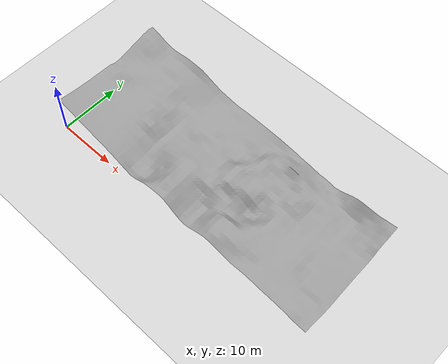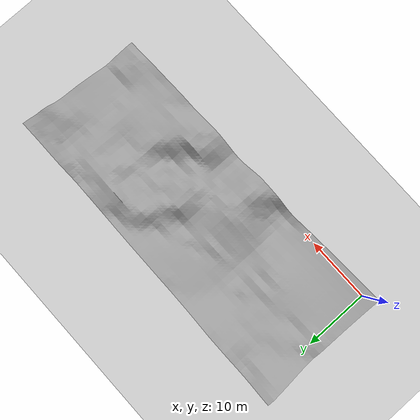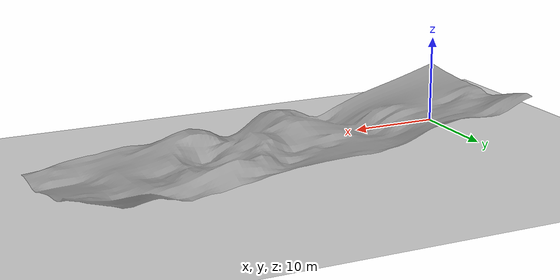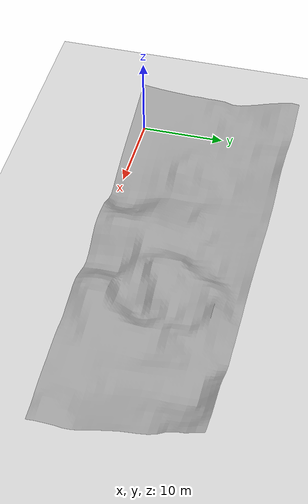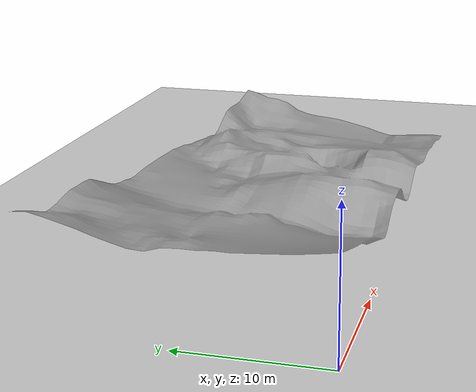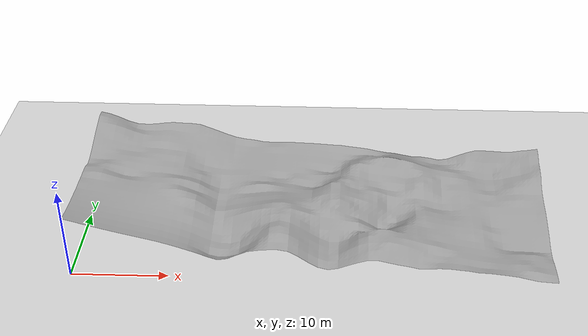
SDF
<sdf version="1.7">
 <world name="default">
  <light name="sun" type="directional">
   <pose>0 0 10 0 -0 0</pose>
   <diffuse>0.8 0.8 0.8 1</diffuse>
   <specular>0.2 0.2 0.2 1</specular>
   <attenuation>
    <range>1000</range>
    <constant>0.9</constant>
    <linear>0.01</linear>
    <quadratic>0.001</quadratic>
   </attenuation>
   <direction>-0.5 0.1 -0.9</direction>
   <spot><inner_angle>0</inner_angle><outer_angle>0</outer_angle><falloff>0</falloff></spot>
  </light>
  <model name="ground_plane">
   <static>1</static>
   <link name="link">
    <collision name="collision">
     <geometry><plane><normal>0 0 1</normal><size>100 100</size></plane></geometry>
     <surface>
      <contact><collide_bitmask>65535</collide_bitmask></contact>
      <friction><ode><mu>0.4</mu><mu2>0.4</mu2></ode></friction>
     </surface>
    </collision>
    <visual name="visual">
     <cast_shadows>0</cast_shadows>
     <geometry><plane><normal>0 0 1</normal><size>100 100</size></plane></geometry>
     <material>
      <script><uri>file://media/materials/scripts/gazebo.material</uri><name>Gazebo/Grey</name></script>
     </material>
    </visual>
   </link>
  </model>
  <gravity>0 0 -9.8</gravity>
  <magnetic_field>6e-06 2.3e-05 -4.2e-05</magnetic_field>
  <atmosphere type="adiabatic"/>
  <physics type="ode">
   <max_step_size>0.001</max_step_size>
   <real_time_factor>1</real_time_factor>
   <real_time_update_rate>1000</real_time_update_rate>
  </physics>
  <scene><ambient>0.4 0.4 0.4 1</ambient><background>0.7 0.7 0.7 1</background><shadows>1</shadows></scene>
  <spherical_coordinates>
   <surface_model>EARTH_WGS84</surface_model>
   <latitude_deg>0</latitude_deg>
   <longitude_deg>0</longitude_deg>
   <elevation>0</elevation>
   <heading_deg>0</heading_deg>
  </spherical_coordinates>
  <model name="MSL_Gale_DEM_Mosaic_1m_v3_X_14315-14364_Y_47079-47098_v1">
   <link name="link">
    <inertial>
     <mass>1</mass>
     <inertia>
      <ixx>0.166667</ixx>
      <ixy>0</ixy>
      <ixz>0</ixz>
      <iyy>0.166667</iyy>
      <iyz>0</iyz>
      <izz>0.166667</izz>
     </inertia>
    </inertial>
    <pose>-5.40297 -11.0159 0.000108 0 -0 0</pose>
    <visual name="visual">
     <geometry>
      <mesh>
       <uri>/home/gaz/catkin_ws/src/robot4ws_description/meshes/MSL_Gale_DEM_Mosaic_1m_v3_X_14315-14364_Y_47079-47098.dae</uri>
       <scale>1 1 1</scale>
      </mesh>
     </geometry>
     <material>
      <script><name>Gazebo/Grey</name><uri>file://media/materials/scripts/gazebo.material</uri></script>
      <shader type="pixel"><normal_map>__default__</normal_map></shader>
      <ambient>0.3 0.3 0.3 1</ambient>
      <diffuse>0.7 0.7 0.7 1</diffuse>
      <specular>0.01 0.01 0.01 1</specular>
      <emissive>0 0 0 1</emissive>
     </material>
    </visual>
    <collision name="collision">
     <geometry>
      <mesh>
       <uri>/home/gaz/catkin_ws/src/robot4ws_description/meshes/MSL_Gale_DEM_Mosaic_1m_v3_X_14315-14364_Y_47079-47098.stl</uri>
       <scale>1 1 1</scale>
      </mesh>
     </geometry>
     <surface>
      <friction>
       <ode><mu>0.4</mu><mu2>0.4</mu2><fdir1>0 0 0</fdir1><slip1>0</slip1><slip2>0</slip2></ode>
       <torsional>
        <coefficient>1</coefficient>
        <patch_radius>0</patch_radius>
        <surface_radius>0</surface_radius>
        <use_patch_radius>1</use_patch_radius>
        <ode><slip>0</slip></ode>
       </torsional>
      </friction>
      <bounce><restitution_coefficient>0</restitution_coefficient><threshold>1e+06</threshold></bounce>
      <contact>
       <collide_without_contact>0</collide_without_contact>
       <collide_without_contact_bitmask>1</collide_without_contact_bitmask>
       <collide_bitmask>1</collide_bitmask>
       <ode>
        <soft_cfm>0</soft_cfm>
        <soft_erp>0.2</soft_erp>
        <kp>1e+13</kp>
        <kd>1</kd>
        <max_vel>0.01</max_vel>
        <min_depth>0</min_depth>
       </ode>
       <bullet>
        <split_impulse>1</split_impulse>
        <split_impulse_penetration_threshold>-0.01</split_impulse_penetration_threshold>
        <soft_cfm>0</soft_cfm>
        <soft_erp>0.2</soft_erp>
        <kp>1e+13</kp>
        <kd>1</kd>
       </bullet>
      </contact>
     </surface>
    </collision>
   </link>
   <static>1</static>
   <pose>4.39633 9.98514 0.071362 1e-05 -0 0</pose>
  </model>
 </world>
</sdf>
